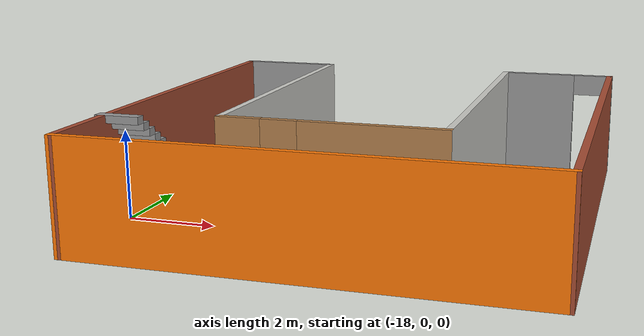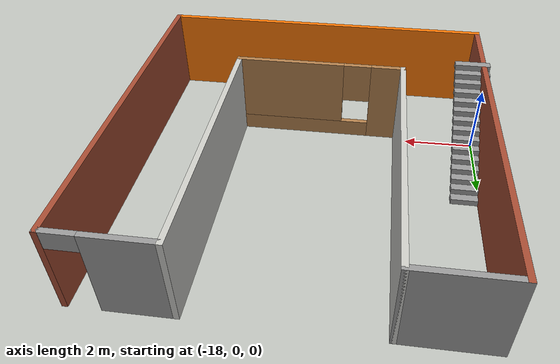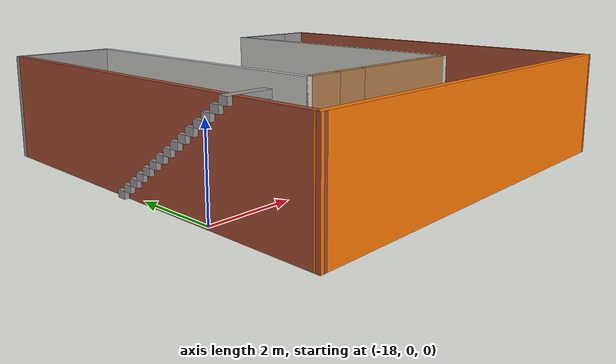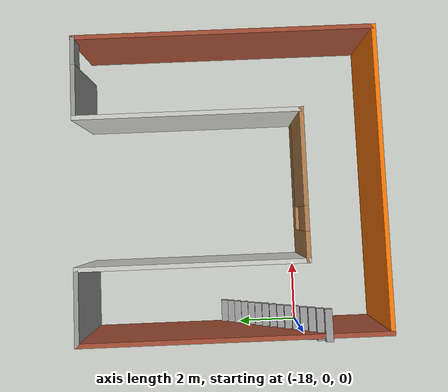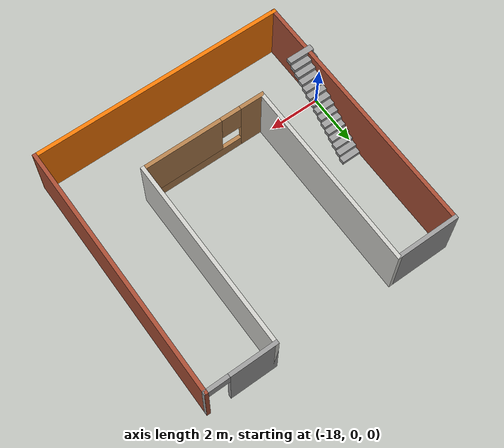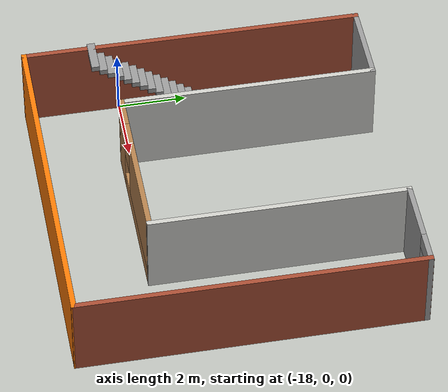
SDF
<?xml version='1.0'?>
<sdf version='1.6'>
  <model name='myhouse'>
    <pose frame=''>-13.1502 2.20748 0 0 -0 0</pose>
    <link name='Stairs_0'>
      <visual name='Stairs_0_Visual_0'>
        <pose frame=''>-4.5522 0.320884 0.083333 0 -0 0</pose>
        <geometry>
          <box>
            <size>1 0.233333 0.166667</size>
          </box>
        </geometry>
        <material>
          <script>
            <uri>file://media/materials/scripts/gazebo.material</uri>
            <name>Gazebo/Grey</name>
          </script>
          <ambient>1 1 1 1</ambient>
        </material>
        <meta>
          <layer>0</layer>
        </meta>
      </visual>
      <collision name='Stairs_0_Collision_0'>
        <geometry>
          <box>
            <size>1 0.233333 0.166667</size>
          </box>
        </geometry>
        <pose frame=''>-4.5522 0.320884 0.083333 0 -0 0</pose>
      </collision>
      <visual name='Stairs_0_Visual_1'>
        <pose frame=''>-4.5522 0.08755 0.25 0 -0 0</pose>
        <geometry>
          <box>
            <size>1 0.233333 0.166667</size>
          </box>
        </geometry>
        <material>
          <script>
            <uri>file://media/materials/scripts/gazebo.material</uri>
            <name>Gazebo/Grey</name>
          </script>
          <ambient>1 1 1 1</ambient>
        </material>
        <meta>
          <layer>0</layer>
        </meta>
      </visual>
      <collision name='Stairs_0_Collision_1'>
        <geometry>
          <box>
            <size>1 0.233333 0.166667</size>
          </box>
        </geometry>
        <pose frame=''>-4.5522 0.08755 0.25 0 -0 0</pose>
      </collision>
      <visual name='Stairs_0_Visual_2'>
        <pose frame=''>-4.5522 -0.145783 0.416667 0 -0 0</pose>
        <geometry>
          <box>
            <size>1 0.233333 0.166667</size>
          </box>
        </geometry>
        <material>
          <script>
            <uri>file://media/materials/scripts/gazebo.material</uri>
            <name>Gazebo/Grey</name>
          </script>
          <ambient>1 1 1 1</ambient>
        </material>
        <meta>
          <layer>0</layer>
        </meta>
      </visual>
      <collision name='Stairs_0_Collision_2'>
        <geometry>
          <box>
            <size>1 0.233333 0.166667</size>
          </box>
        </geometry>
        <pose frame=''>-4.5522 -0.145783 0.416667 0 -0 0</pose>
      </collision>
      <visual name='Stairs_0_Visual_3'>
        <pose frame=''>-4.5522 -0.379116 0.583333 0 -0 0</pose>
        <geometry>
          <box>
            <size>1 0.233333 0.166667</size>
          </box>
        </geometry>
        <material>
          <script>
            <uri>file://media/materials/scripts/gazebo.material</uri>
            <name>Gazebo/Grey</name>
          </script>
          <ambient>1 1 1 1</ambient>
        </material>
        <meta>
          <layer>0</layer>
        </meta>
      </visual>
      <collision name='Stairs_0_Collision_3'>
        <geometry>
          <box>
            <size>1 0.233333 0.166667</size>
          </box>
        </geometry>
        <pose frame=''>-4.5522 -0.379116 0.583333 0 -0 0</pose>
      </collision>
      <visual name='Stairs_0_Visual_4'>
        <pose frame=''>-4.5522 -0.61245 0.75 0 -0 0</pose>
        <geometry>
          <box>
            <size>1 0.233333 0.166667</size>
          </box>
        </geometry>
        <material>
          <script>
            <uri>file://media/materials/scripts/gazebo.material</uri>
            <name>Gazebo/Grey</name>
          </script>
          <ambient>1 1 1 1</ambient>
        </material>
        <meta>
          <layer>0</layer>
        </meta>
      </visual>
      <collision name='Stairs_0_Collision_4'>
        <geometry>
          <box>
            <size>1 0.233333 0.166667</size>
          </box>
        </geometry>
        <pose frame=''>-4.5522 -0.61245 0.75 0 -0 0</pose>
      </collision>
      <visual name='Stairs_0_Visual_5'>
        <pose frame=''>-4.5522 -0.845783 0.916667 0 -0 0</pose>
        <geometry>
          <box>
            <size>1 0.233333 0.166667</size>
          </box>
        </geometry>
        <material>
          <script>
            <uri>file://media/materials/scripts/gazebo.material</uri>
            <name>Gazebo/Grey</name>
          </script>
          <ambient>1 1 1 1</ambient>
        </material>
        <meta>
          <layer>0</layer>
        </meta>
      </visual>
      <collision name='Stairs_0_Collision_5'>
        <geometry>
          <box>
            <size>1 0.233333 0.166667</size>
          </box>
        </geometry>
        <pose frame=''>-4.5522 -0.845783 0.916667 0 -0 0</pose>
      </collision>
      <visual name='Stairs_0_Visual_6'>
        <pose frame=''>-4.5522 -1.07912 1.08333 0 -0 0</pose>
        <geometry>
          <box>
            <size>1 0.233333 0.166667</size>
          </box>
        </geometry>
        <material>
          <script>
            <uri>file://media/materials/scripts/gazebo.material</uri>
            <name>Gazebo/Grey</name>
          </script>
          <ambient>1 1 1 1</ambient>
        </material>
        <meta>
          <layer>0</layer>
        </meta>
      </visual>
      <collision name='Stairs_0_Collision_6'>
        <geometry>
          <box>
            <size>1 0.233333 0.166667</size>
          </box>
        </geometry>
        <pose frame=''>-4.5522 -1.07912 1.08333 0 -0 0</pose>
      </collision>
      <visual name='Stairs_0_Visual_7'>
        <pose frame=''>-4.5522 -1.31245 1.25 0 -0 0</pose>
        <geometry>
          <box>
            <size>1 0.233333 0.166667</size>
          </box>
        </geometry>
        <material>
          <script>
            <uri>file://media/materials/scripts/gazebo.material</uri>
            <name>Gazebo/Grey</name>
          </script>
          <ambient>1 1 1 1</ambient>
        </material>
        <meta>
          <layer>0</layer>
        </meta>
      </visual>
      <collision name='Stairs_0_Collision_7'>
        <geometry>
          <box>
            <size>1 0.233333 0.166667</size>
          </box>
        </geometry>
        <pose frame=''>-4.5522 -1.31245 1.25 0 -0 0</pose>
      </collision>
      <visual name='Stairs_0_Visual_8'>
        <pose frame=''>-4.5522 -1.54578 1.41667 0 -0 0</pose>
        <geometry>
          <box>
            <size>1 0.233333 0.166667</size>
          </box>
        </geometry>
        <material>
          <script>
            <uri>file://media/materials/scripts/gazebo.material</uri>
            <name>Gazebo/Grey</name>
          </script>
          <ambient>1 1 1 1</ambient>
        </material>
        <meta>
          <layer>0</layer>
        </meta>
      </visual>
      <collision name='Stairs_0_Collision_8'>
        <geometry>
          <box>
            <size>1 0.233333 0.166667</size>
          </box>
        </geometry>
        <pose frame=''>-4.5522 -1.54578 1.41667 0 -0 0</pose>
      </collision>
      <visual name='Stairs_0_Visual_9'>
        <pose frame=''>-4.5522 -1.77912 1.58333 0 -0 0</pose>
        <geometry>
          <box>
            <size>1 0.233333 0.166667</size>
          </box>
        </geometry>
        <material>
          <script>
            <uri>file://media/materials/scripts/gazebo.material</uri>
            <name>Gazebo/Grey</name>
          </script>
          <ambient>1 1 1 1</ambient>
        </material>
        <meta>
          <layer>0</layer>
        </meta>
      </visual>
      <collision name='Stairs_0_Collision_9'>
        <geometry>
          <box>
            <size>1 0.233333 0.166667</size>
          </box>
        </geometry>
        <pose frame=''>-4.5522 -1.77912 1.58333 0 -0 0</pose>
      </collision>
      <visual name='Stairs_0_Visual_10'>
        <pose frame=''>-4.5522 -2.01245 1.75 0 -0 0</pose>
        <geometry>
          <box>
            <size>1 0.233333 0.166667</size>
          </box>
        </geometry>
        <material>
          <script>
            <uri>file://media/materials/scripts/gazebo.material</uri>
            <name>Gazebo/Grey</name>
          </script>
          <ambient>1 1 1 1</ambient>
        </material>
        <meta>
          <layer>0</layer>
        </meta>
      </visual>
      <collision name='Stairs_0_Collision_10'>
        <geometry>
          <box>
            <size>1 0.233333 0.166667</size>
          </box>
        </geometry>
        <pose frame=''>-4.5522 -2.01245 1.75 0 -0 0</pose>
      </collision>
      <visual name='Stairs_0_Visual_11'>
        <pose frame=''>-4.5522 -2.24578 1.91667 0 -0 0</pose>
        <geometry>
          <box>
            <size>1 0.233333 0.166667</size>
          </box>
        </geometry>
        <material>
          <script>
            <uri>file://media/materials/scripts/gazebo.material</uri>
            <name>Gazebo/Grey</name>
          </script>
          <ambient>1 1 1 1</ambient>
        </material>
        <meta>
          <layer>0</layer>
        </meta>
      </visual>
      <collision name='Stairs_0_Collision_11'>
        <geometry>
          <box>
            <size>1 0.233333 0.166667</size>
          </box>
        </geometry>
        <pose frame=''>-4.5522 -2.24578 1.91667 0 -0 0</pose>
      </collision>
      <visual name='Stairs_0_Visual_12'>
        <pose frame=''>-4.5522 -2.47912 2.08333 0 -0 0</pose>
        <geometry>
          <box>
            <size>1 0.233333 0.166667</size>
          </box>
        </geometry>
        <material>
          <script>
            <uri>file://media/materials/scripts/gazebo.material</uri>
            <name>Gazebo/Grey</name>
          </script>
          <ambient>1 1 1 1</ambient>
        </material>
        <meta>
          <layer>0</layer>
        </meta>
      </visual>
      <collision name='Stairs_0_Collision_12'>
        <geometry>
          <box>
            <size>1 0.233333 0.166667</size>
          </box>
        </geometry>
        <pose frame=''>-4.5522 -2.47912 2.08333 0 -0 0</pose>
      </collision>
      <visual name='Stairs_0_Visual_13'>
        <pose frame=''>-4.5522 -2.71245 2.25 0 -0 0</pose>
        <geometry>
          <box>
            <size>1 0.233333 0.166667</size>
          </box>
        </geometry>
        <material>
          <script>
            <uri>file://media/materials/scripts/gazebo.material</uri>
            <name>Gazebo/Grey</name>
          </script>
          <ambient>1 1 1 1</ambient>
        </material>
        <meta>
          <layer>0</layer>
        </meta>
      </visual>
      <collision name='Stairs_0_Collision_13'>
        <geometry>
          <box>
            <size>1 0.233333 0.166667</size>
          </box>
        </geometry>
        <pose frame=''>-4.5522 -2.71245 2.25 0 -0 0</pose>
      </collision>
      <visual name='Stairs_0_Visual_14'>
        <pose frame=''>-4.5522 -2.94578 2.41667 0 -0 0</pose>
        <geometry>
          <box>
            <size>1 0.233333 0.166667</size>
          </box>
        </geometry>
        <material>
          <script>
            <uri>file://media/materials/scripts/gazebo.material</uri>
            <name>Gazebo/Grey</name>
          </script>
          <ambient>1 1 1 1</ambient>
        </material>
        <meta>
          <layer>0</layer>
        </meta>
      </visual>
      <collision name='Stairs_0_Collision_14'>
        <geometry>
          <box>
            <size>1 0.233333 0.166667</size>
          </box>
        </geometry>
        <pose frame=''>-4.5522 -2.94578 2.41667 0 -0 0</pose>
      </collision>
    </link>
    <link name='Wall_0'>
      <collision name='Wall_0_Collision'>
        <geometry>
          <box>
            <size>2.5 0.15 2.5</size>
          </box>
        </geometry>
        <pose frame=''>0 0 1.25 0 -0 0</pose>
      </collision>
      <visual name='Wall_0_Visual'>
        <pose frame=''>0 0 1.25 0 -0 0</pose>
        <geometry>
          <box>
            <size>2.5 0.15 2.5</size>
          </box>
        </geometry>
        <material>
          <script>
            <uri>file://media/materials/scripts/gazebo.material</uri>
            <name>Gazebo/Grey</name>
          </script>
          <ambient>1 1 1 1</ambient>
        </material>
        <meta>
          <layer>0</layer>
        </meta>
      </visual>
      <pose frame=''>-3.69784 4.92252 0 0 -0 0</pose>
    </link>
    <link name='Wall_11'>
      <pose frame=''>-0.097843 -2.42748 0 0 -0 0</pose>
      <visual name='Wall_11_Visual_0'>
        <pose frame=''>-2.00136 0 1.25 0 -0 0</pose>
        <geometry>
          <box>
            <size>0.997273 0.15 2.5</size>
          </box>
        </geometry>
        <material>
          <script>
            <uri>file://media/materials/scripts/gazebo.material</uri>
            <name>Gazebo/Wood</name>
          </script>
          <ambient>1 1 1 1</ambient>
        </material>
        <meta>
          <layer>0</layer>
        </meta>
      </visual>
      <collision name='Wall_11_Collision_0'>
        <geometry>
          <box>
            <size>0.997273 0.15 2.5</size>
          </box>
        </geometry>
        <pose frame=''>-2.00136 0 1.25 0 -0 0</pose>
      </collision>
      <visual name='Wall_11_Visual_1'>
        <pose frame=''>0.498637 0 0.25 0 -0 0</pose>
        <geometry>
          <box>
            <size>4.00273 0.15 0.5</size>
          </box>
        </geometry>
        <material>
          <script>
            <uri>file://media/materials/scripts/gazebo.material</uri>
            <name>Gazebo/Wood</name>
          </script>
          <ambient>1 1 1 1</ambient>
        </material>
        <meta>
          <layer>0</layer>
        </meta>
      </visual>
      <collision name='Wall_11_Collision_1'>
        <geometry>
          <box>
            <size>4.00273 0.15 0.5</size>
          </box>
        </geometry>
        <pose frame=''>0.498637 0 0.25 0 -0 0</pose>
      </collision>
      <visual name='Wall_11_Visual_2'>
        <pose frame=''>0.898637 0 1.5 0 -0 0</pose>
        <geometry>
          <box>
            <size>3.20273 0.15 2</size>
          </box>
        </geometry>
        <material>
          <script>
            <uri>file://media/materials/scripts/gazebo.material</uri>
            <name>Gazebo/Wood</name>
          </script>
          <ambient>1 1 1 1</ambient>
        </material>
        <meta>
          <layer>0</layer>
        </meta>
      </visual>
      <collision name='Wall_11_Collision_2'>
        <geometry>
          <box>
            <size>3.20273 0.15 2</size>
          </box>
        </geometry>
        <pose frame=''>0.898637 0 1.5 0 -0 0</pose>
      </collision>
      <visual name='Wall_11_Visual_3'>
        <pose frame=''>-1.10273 0 1.9 0 -0 0</pose>
        <geometry>
          <box>
            <size>0.8 0.15 1.2</size>
          </box>
        </geometry>
        <material>
          <script>
            <uri>file://media/materials/scripts/gazebo.material</uri>
            <name>Gazebo/Wood</name>
          </script>
          <ambient>1 1 1 1</ambient>
        </material>
        <meta>
          <layer>0</layer>
        </meta>
      </visual>
      <collision name='Wall_11_Collision_3'>
        <geometry>
          <box>
            <size>0.8 0.15 1.2</size>
          </box>
        </geometry>
        <pose frame=''>-1.10273 0 1.9 0 -0 0</pose>
      </collision>
    </link>
    <link name='Wall_12'>
      <collision name='Wall_12_Collision'>
        <geometry>
          <box>
            <size>7.5 0.15 2.5</size>
          </box>
        </geometry>
        <pose frame=''>0 0 1.25 0 -0 0</pose>
      </collision>
      <visual name='Wall_12_Visual'>
        <pose frame=''>0 0 1.25 0 -0 0</pose>
        <geometry>
          <box>
            <size>7.5 0.15 2.5</size>
          </box>
        </geometry>
        <material>
          <script>
            <uri>file://media/materials/scripts/gazebo.material</uri>
            <name>Gazebo/CeilingTiled</name>
          </script>
          <ambient>1 1 1 1</ambient>
        </material>
        <meta>
          <layer>0</layer>
        </meta>
      </visual>
      <pose frame=''>2.32716 1.24752 0 0 -0 1.5708</pose>
    </link>
    <link name='Wall_13'>
      <pose frame=''>3.65216 4.92252 0 0 -0 0</pose>
      <visual name='Wall_13_Visual_0'>
        <pose frame=''>-0.478542 0 1.25 0 -0 0</pose>
        <geometry>
          <box>
            <size>1.84292 0.15 2.5</size>
          </box>
        </geometry>
        <material>
          <script>
            <uri>file://media/materials/scripts/gazebo.material</uri>
            <name>Gazebo/Grey</name>
          </script>
          <ambient>1 1 1 1</ambient>
        </material>
        <meta>
          <layer>0</layer>
        </meta>
      </visual>
      <collision name='Wall_13_Collision_0'>
        <geometry>
          <box>
            <size>1.84292 0.15 2.5</size>
          </box>
        </geometry>
        <pose frame=''>-0.478542 0 1.25 0 -0 0</pose>
      </collision>
      <visual name='Wall_13_Visual_1'>
        <pose frame=''>1.37146 0 1.25 0 -0 0</pose>
        <geometry>
          <box>
            <size>0.057084 0.15 2.5</size>
          </box>
        </geometry>
        <material>
          <script>
            <uri>file://media/materials/scripts/gazebo.material</uri>
            <name>Gazebo/Grey</name>
          </script>
          <ambient>1 1 1 1</ambient>
        </material>
        <meta>
          <layer>0</layer>
        </meta>
      </visual>
      <collision name='Wall_13_Collision_1'>
        <geometry>
          <box>
            <size>0.057084 0.15 2.5</size>
          </box>
        </geometry>
        <pose frame=''>1.37146 0 1.25 0 -0 0</pose>
      </collision>
      <visual name='Wall_13_Visual_2'>
        <pose frame=''>0.892916 0 2.25 0 -0 0</pose>
        <geometry>
          <box>
            <size>0.9 0.15 0.5</size>
          </box>
        </geometry>
        <material>
          <script>
            <uri>file://media/materials/scripts/gazebo.material</uri>
            <name>Gazebo/Grey</name>
          </script>
          <ambient>1 1 1 1</ambient>
        </material>
        <meta>
          <layer>0</layer>
        </meta>
      </visual>
      <collision name='Wall_13_Collision_2'>
        <geometry>
          <box>
            <size>0.9 0.15 0.5</size>
          </box>
        </geometry>
        <pose frame=''>0.892916 0 2.25 0 -0 0</pose>
      </collision>
    </link>
    <link name='Wall_15'>
      <collision name='Wall_15_Collision'>
        <geometry>
          <box>
            <size>10 0.15 2.5</size>
          </box>
        </geometry>
        <pose frame=''>0 0 1.25 0 -0 0</pose>
      </collision>
      <visual name='Wall_15_Visual'>
        <pose frame=''>0 0 1.25 0 -0 0</pose>
        <geometry>
          <box>
            <size>10 0.15 2.5</size>
          </box>
        </geometry>
        <material>
          <script>
            <uri>file://media/materials/scripts/gazebo.material</uri>
            <name>Gazebo/Bricks</name>
          </script>
          <ambient>1 1 1 1</ambient>
        </material>
        <meta>
          <layer>0</layer>
        </meta>
      </visual>
      <pose frame=''>-4.87284 -0.002481 0 0 0 -1.5708</pose>
    </link>
    <link name='Wall_19'>
      <collision name='Wall_19_Collision'>
        <geometry>
          <box>
            <size>10 0.15 2.5</size>
          </box>
        </geometry>
        <pose frame=''>0 0 1.25 0 -0 0</pose>
      </collision>
      <visual name='Wall_19_Visual'>
        <pose frame=''>0 0 1.25 0 -0 0</pose>
        <geometry>
          <box>
            <size>10 0.15 2.5</size>
          </box>
        </geometry>
        <material>
          <script>
            <uri>file://media/materials/scripts/gazebo.material</uri>
            <name>Gazebo/Grey</name>
          </script>
          <ambient>0.996078 0.47451 0.0196078 1</ambient>
        </material>
        <meta>
          <layer>0</layer>
        </meta>
      </visual>
      <pose frame=''>0.052157 -4.92498 0 0 -0 0.000508</pose>
    </link>
    <link name='Wall_21'>
      <collision name='Wall_21_Collision'>
        <geometry>
          <box>
            <size>10 0.15 2.5</size>
          </box>
        </geometry>
        <pose frame=''>0 0 1.25 0 -0 0</pose>
      </collision>
      <visual name='Wall_21_Visual'>
        <pose frame=''>0 0 1.25 0 -0 0</pose>
        <geometry>
          <box>
            <size>10 0.15 2.5</size>
          </box>
        </geometry>
        <material>
          <script>
            <uri>file://media/materials/scripts/gazebo.material</uri>
            <name>Gazebo/Bricks</name>
          </script>
          <ambient>1 1 1 1</ambient>
        </material>
        <meta>
          <layer>0</layer>
        </meta>
      </visual>
      <pose frame=''>4.97716 0.002519 0 0 -0 1.5708</pose>
    </link>
    <link name='Wall_9'>
      <collision name='Wall_9_Collision'>
        <geometry>
          <box>
            <size>7.5 0.15 2.5</size>
          </box>
        </geometry>
        <pose frame=''>0 0 1.25 0 -0 0</pose>
      </collision>
      <visual name='Wall_9_Visual'>
        <pose frame=''>0 0 1.25 0 -0 0</pose>
        <geometry>
          <box>
            <size>7.5 0.15 2.5</size>
          </box>
        </geometry>
        <material>
          <script>
            <uri>file://media/materials/scripts/gazebo.material</uri>
            <name>Gazebo/CeilingTiled</name>
          </script>
          <ambient>1 1 1 1</ambient>
        </material>
        <meta>
          <layer>0</layer>
        </meta>
      </visual>
      <pose frame=''>-2.52284 1.24752 0 0 0 -1.5708</pose>
    </link>
    <static>1</static>
  </model>
</sdf>
